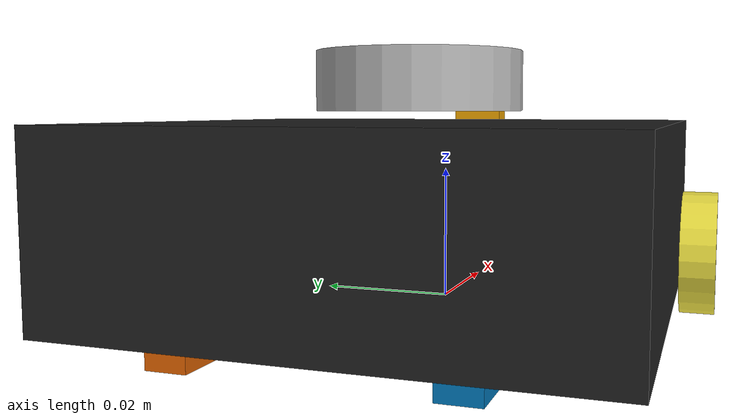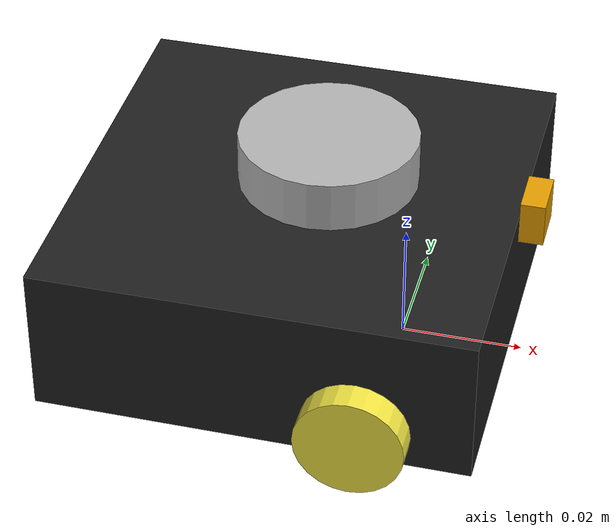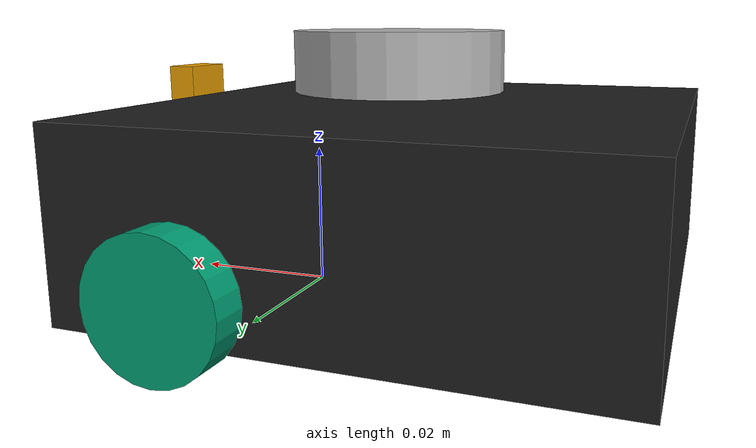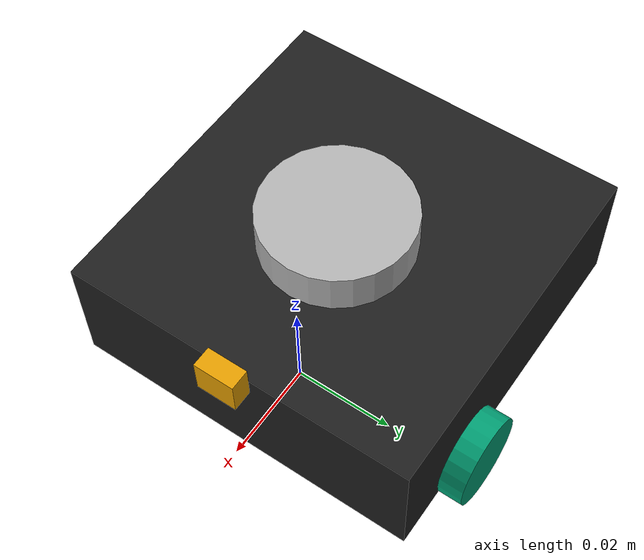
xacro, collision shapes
<?xml version="1.0" ?>
<robot name="turtlebot3_waffle_pi" xmlns:xacro="http://ros.org/wiki/xacro">
  <xacro:include filename="$(find turtlebot3_description)/urdf/common_properties.xacro"/>
  <xacro:include filename="$(find turtlebot3_description)/urdf/turtlebot3_waffle_pi.gazebo.xacro"/>

  <link name="base_footprint"/>

  <joint name="base_joint" type="fixed">
    <parent link="base_footprint"/>
    <child link="base_link" />
    <origin xyz="0 0 0.00265" rpy="0 0 0"/>
  </joint>

  <link name="base_link">
    <visual>
      <origin xyz="-0.01696 0 0.0" rpy="0 0 0"/>
      <geometry>
        <mesh filename="package://turtlebot3_description/meshes/bases/waffle_pi_base.stl" scale="0.000265 0.000265 0.000265"/>
      </geometry>
      <material name="light_black"/>
    </visual>

    <collision>
      <origin xyz="-0.01696 0 0.012455" rpy="0 0 0"/>
      <geometry>
        <box size="0.07049 0.07049 0.02491"/>
      </geometry>
    </collision>

    <inertial>
      <origin xyz="0 0 0" rpy="0 0 0"/>
      <mass value="1.3729096e+00"/>
      <inertia ixx="8.7002718e-03" ixy="-4.7576583e-05" ixz="1.1160499e-04"
               iyy="8.6195418e-03" iyz="-3.5422299e-06"
               izz="1.4612727e-02" />
    </inertial>
  </link>

  <joint name="wheel_left_joint" type="continuous">
    <parent link="base_link"/>
    <child link="wheel_left_link"/>
    <origin xyz="0.0 0.03816 0.006095" rpy="-1.57 0 0"/>
    <axis xyz="0 0 1"/>
  </joint>
5
  <link name="wheel_left_link">
    <visual>
      <origin xyz="0 0 0" rpy="1.57 0 0"/>
      <geometry>
        <mesh filename="package://turtlebot3_description/meshes/wheels/left_tire.stl" scale="0.000265 0.000265 0.000265"/>
      </geometry>
      <material name="dark"/>
    </visual>

    <collision>
      <origin xyz="0 0 0" rpy="0 0 0"/>
      <geometry>
        <cylinder length="0.00477" radius="0.008745"/>
      </geometry>
    </collision>

    <inertial>
      <origin xyz="0 0 0" />
      <mass value="2.8498940e-02" />
      <inertia ixx="1.1175580e-05" ixy="-4.2369783e-11" ixz="-5.9381719e-09"
               iyy="1.1192413e-05" iyz="-1.4400107e-11"
               izz="2.0712558e-05" />
      </inertial>
  </link>

  <joint name="wheel_right_joint" type="continuous">
    <parent link="base_link"/>
    <child link="wheel_right_link"/>
    <origin xyz="0.0 -0.03816 0.006095" rpy="-1.57 0 0"/>
    <axis xyz="0 0 1"/>
  </joint>

  <link name="wheel_right_link">
    <visual>
      <origin xyz="0 0 0" rpy="1.57 0 0"/>
      <geometry>
        <mesh filename="package://turtlebot3_description/meshes/wheels/right_tire.stl" scale="0.000265 0.000265 0.000265"/>
      </geometry>
      <material name="dark"/>
    </visual>

    <collision>
      <origin xyz="0 0 0" rpy="0 0 0"/>
      <geometry>
        <cylinder length="0.00477" radius="0.008745"/>
      </geometry>
    </collision>

    <inertial>
      <origin xyz="0 0 0" />
      <mass value="2.8498940e-02" />
      <inertia ixx="1.1175580e-05" ixy="-4.2369783e-11" ixz="-5.9381719e-09"
               iyy="1.1192413e-05" iyz="-1.4400107e-11"
               izz="2.0712558e-05" />
      </inertial>
  </link>

  <joint name="caster_back_right_joint" type="fixed">
    <parent link="base_link"/>
    <child link="caster_back_right_link"/>
    <origin xyz="-0.046905 -0.01696 -0.00106" rpy="-1.57 0 0"/>
  </joint>

  <link name="caster_back_right_link">
    <collision>
      <origin xyz="0 0.000265 0" rpy="0 0 0"/>
      <geometry>
        <box size="0.00795 0.002385 0.0053"/>
      </geometry>
    </collision>

    <inertial>
      <origin xyz="0 0 0" />
      <mass value="0.005" />
      <inertia ixx="0.001" ixy="0.0" ixz="0.0"
               iyy="0.001" iyz="0.0"
               izz="0.001" />
    </inertial>
  </link>

  <joint name="caster_back_left_joint" type="fixed">
    <parent link="base_link"/>
    <child link="caster_back_left_link"/>
    <origin xyz="-0.046905 0.01696 -0.00106" rpy="-1.57 0 0"/>
  </joint>

  <link name="caster_back_left_link">
    <collision>
      <origin xyz="0 0.000265 0" rpy="0 0 0"/>
      <geometry>
        <box size="0.00795 0.002385 0.0053"/>
      </geometry>
    </collision>

    <inertial>
      <origin xyz="0 0 0" />
      <mass value="0.005" />
      <inertia ixx="0.001" ixy="0.0" ixz="0.0"
               iyy="0.001" iyz="0.0"
               izz="0.001" />
    </inertial>
  </link>

  <joint name="imu_joint" type="fixed">
    <parent link="base_link"/>
    <child link="imu_link"/>
    <origin xyz="0.0 0 0.01802" rpy="0 0 0"/>
  </joint>

  <link name="imu_link"/>

  <joint name="scan_joint" type="fixed">
    <parent link="base_link"/>
    <child link="base_scan"/>
    <origin xyz="-0.01696 0 0.03233" rpy="0 0 0"/>
  </joint>

  <link name="base_scan">
    <visual>
      <origin xyz="0 0 0.0" rpy="0 0 0"/>
      <geometry>
        <mesh filename="package://turtlebot3_description/meshes/sensors/lds.stl" scale="0.000265 0.000265 0.000265"/>
      </geometry>
      <material name="dark"/>
    </visual>

    <collision>
      <origin xyz="0.003975 0 -0.0017225" rpy="0 0 0"/>
      <geometry>
        <cylinder length="0.0083475" radius="0.014575"/>
      </geometry>
    </collision>

    <inertial>
      <mass value="0.114" />
      <origin xyz="0 0 0" />
      <inertia ixx="0.001" ixy="0.0" ixz="0.0"
               iyy="0.001" iyz="0.0"
               izz="0.001" />
    </inertial>
  </link>

  <joint name="camera_joint" type="fixed">
    <origin xyz="0.019345 -0.002915 0.02226" rpy="0 0 0"/>
    <parent link="base_link"/>
    <child link="camera_link"/>
  </joint>

  <link name="camera_link">
    <collision>
      <origin xyz="0.001325 0.002915 0.003445" rpy="0 0 0"/>
      <geometry>
        <box size="0.003975 0.00795 0.007155"/>
      </geometry>
    </collision>
  </link>

  <joint name="camera_rgb_joint" type="fixed">
    <origin xyz="0.000795 0.002915 0.002385" rpy="0 0 0"/>
    <parent link="camera_link"/>
    <child link="camera_rgb_frame"/>
  </joint>
  <link name="camera_rgb_frame"/>

  <joint name="camera_rgb_optical_joint" type="fixed">
    <origin xyz="0 0 0" rpy="-1.57 0 -1.57"/>
    <parent link="camera_rgb_frame"/>
    <child link="camera_rgb_optical_frame"/>
  </joint>
  <link name="camera_rgb_optical_frame"/>

  <gazebo>
    <plugin name="gazebo_ros_control" filename="libgazebo_ros_control.so">
      <robotNamespace>/simple_model</robotNamespace>
      <legacyModeNS>true</legacyModeNS>
      <robotSimType>gazebo_ros_control/DefaultRobotHWSim</robotSimType>
    </plugin>
  </gazebo>

  <transmission name="wheel_right_trans">
     <type>transmission_interface/SimpleTransmission</type>
     <actuator name="wheel_right_motor">
       <hardwareInterface>hardware_interface/VelocityJointInterface</hardwareInterface>
       <mechanicalReduction>7</mechanicalReduction>
     </actuator>
     <joint name="wheel_right_joint">
       <hardwareInterface>hardware_interface/VelocityJointInterface</hardwareInterface>
     </joint>
  </transmission>

  <transmission name="wheel_left_trans">
     <type>transmission_interface/SimpleTransmission</type>
     <actuator name="wheel_left_motor">
       <hardwareInterface>hardware_interface/VelocityJointInterface</hardwareInterface>
       <mechanicalReduction>7</mechanicalReduction>
     </actuator>
     <joint name="wheel_left_joint">
       <hardwareInterface>hardware_interface/VelocityJointInterface</hardwareInterface>
     </joint>
  </transmission>

</robot>
